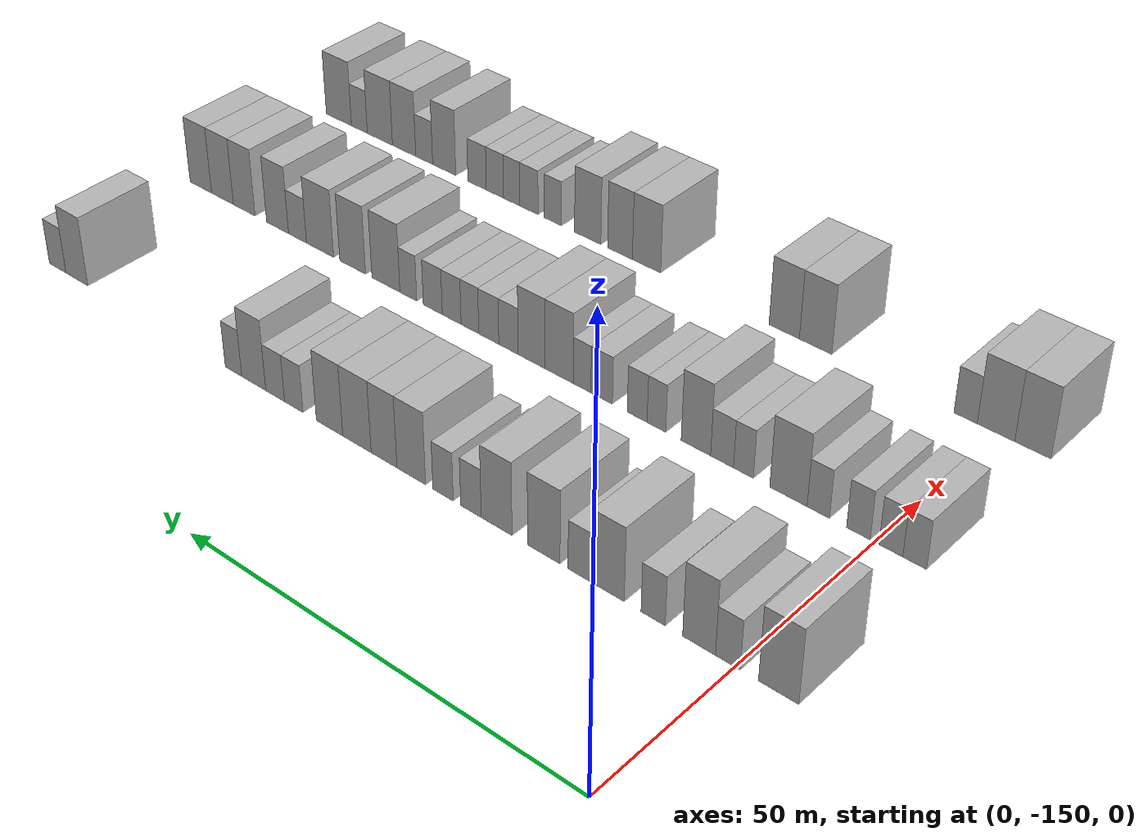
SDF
<sdf version="1.6">
 <world name="default">
  <model name="building_24">
   <static>1</static>
   <pose>25.0000 -154.7398 0 0.000000 0.000000 0.000000</pose>
   <link name="link">
    <pose>0 0 4.50 0 0 0</pose>
    <collision name="collision"><geometry><box><size>10.0000 4.3622 9.0000</size></box></geometry></collision>
    <visual name="visual">
     <cast_shadows>0</cast_shadows>
     <geometry><box><size>10.0000 4.3622 9.0000</size></box></geometry>
     <material>
      <script>
       <uri>model://HANNAS_wall/materials/scripts</uri>
       <uri>model://HANNAS_wall/materials/textures</uri>
       <name>vrc/HANNAS_wall</name>
      </script>
     </material>
    </visual>
   </link>
  </model>
  <model name="building_25">
   <static>1</static>
   <pose>25.0000 -149.1673 0 0.000000 0.000000 0.000000</pose>
   <link name="link">
    <pose>0 0 3.00 0 0 0</pose>
    <collision name="collision"><geometry><box><size>10.0000 2.7828 6.0000</size></box></geometry></collision>
    <visual name="visual">
     <cast_shadows>0</cast_shadows>
     <geometry><box><size>10.0000 2.7828 6.0000</size></box></geometry>
     <material>
      <script>
       <uri>model://HANNAS_wall/materials/scripts</uri>
       <uri>model://HANNAS_wall/materials/textures</uri>
       <name>vrc/HANNAS_wall</name>
      </script>
     </material>
    </visual>
   </link>
  </model>
  <model name="building_26">
   <static>1</static>
   <pose>25.0000 -145.9105 0 0.000000 0.000000 0.000000</pose>
   <link name="link">
    <pose>0 0 4.50 0 0 0</pose>
    <collision name="collision"><geometry><box><size>10.0000 3.7306 9.0000</size></box></geometry></collision>
    <visual name="visual">
     <cast_shadows>0</cast_shadows>
     <geometry><box><size>10.0000 3.7306 9.0000</size></box></geometry>
     <material>
      <script>
       <uri>model://HANNAS_wall/materials/scripts</uri>
       <uri>model://HANNAS_wall/materials/textures</uri>
       <name>vrc/HANNAS_wall</name>
      </script>
     </material>
    </visual>
   </link>
  </model>
  <model name="building_27">
   <static>1</static>
   <pose>25.0000 -140.6263 0 0.000000 0.000000 0.000000</pose>
   <link name="link">
    <pose>0 0 3.00 0 0 0</pose>
    <collision name="collision"><geometry><box><size>10.0000 2.8379 6.0000</size></box></geometry></collision>
    <visual name="visual">
     <cast_shadows>0</cast_shadows>
     <geometry><box><size>10.0000 2.8379 6.0000</size></box></geometry>
     <material>
      <script>
       <uri>model://HANNAS_wall/materials/scripts</uri>
       <uri>model://HANNAS_wall/materials/textures</uri>
       <name>vrc/HANNAS_wall</name>
      </script>
     </material>
    </visual>
   </link>
  </model>
  <model name="building_28">
   <static>1</static>
   <pose>25.0000 -135.2350 0 0.000000 0.000000 0.000000</pose>
   <link name="link">
    <pose>0 0 4.50 0 0 0</pose>
    <collision name="collision"><geometry><box><size>10.0000 3.9448 9.0000</size></box></geometry></collision>
    <visual name="visual">
     <cast_shadows>0</cast_shadows>
     <geometry><box><size>10.0000 3.9448 9.0000</size></box></geometry>
     <material>
      <script>
       <uri>model://HANNAS_wall/materials/scripts</uri>
       <uri>model://HANNAS_wall/materials/textures</uri>
       <name>vrc/HANNAS_wall</name>
      </script>
     </material>
    </visual>
   </link>
  </model>
  <model name="building_29">
   <static>1</static>
   <pose>25.0000 -131.8254 0 0.000000 0.000000 0.000000</pose>
   <link name="link">
    <pose>0 0 3.00 0 0 0</pose>
    <collision name="collision"><geometry><box><size>10.0000 2.8742 6.0000</size></box></geometry></collision>
    <visual name="visual">
     <cast_shadows>0</cast_shadows>
     <geometry><box><size>10.0000 2.8742 6.0000</size></box></geometry>
     <material>
      <script>
       <uri>model://HANNAS_wall/materials/scripts</uri>
       <uri>model://HANNAS_wall/materials/textures</uri>
       <name>vrc/HANNAS_wall</name>
      </script>
     </material>
    </visual>
   </link>
  </model>
  <model name="building_30">
   <static>1</static>
   <pose>25.0000 -127.3607 0 0.000000 0.000000 0.000000</pose>
   <link name="link">
    <pose>0 0 4.50 0 0 0</pose>
    <collision name="collision"><geometry><box><size>10.0000 4.0552 9.0000</size></box></geometry></collision>
    <visual name="visual">
     <cast_shadows>0</cast_shadows>
     <geometry><box><size>10.0000 4.0552 9.0000</size></box></geometry>
     <material>
      <script>
       <uri>model://HANNAS_wall/materials/scripts</uri>
       <uri>model://HANNAS_wall/materials/textures</uri>
       <name>vrc/HANNAS_wall</name>
      </script>
     </material>
    </visual>
   </link>
  </model>
  <model name="building_31">
   <static>1</static>
   <pose>25.0000 -121.3324 0 0.000000 0.000000 0.000000</pose>
   <link name="link">
    <pose>0 0 4.50 0 0 0</pose>
    <collision name="collision"><geometry><box><size>10.0000 4.0013 9.0000</size></box></geometry></collision>
    <visual name="visual">
     <cast_shadows>0</cast_shadows>
     <geometry><box><size>10.0000 4.0013 9.0000</size></box></geometry>
     <material>
      <script>
       <uri>model://HANNAS_wall/materials/scripts</uri>
       <uri>model://HANNAS_wall/materials/textures</uri>
       <name>vrc/HANNAS_wall</name>
      </script>
     </material>
    </visual>
   </link>
  </model>
  <model name="building_32">
   <static>1</static>
   <pose>25.0000 -117.9784 0 0.000000 0.000000 0.000000</pose>
   <link name="link">
    <pose>0 0 3.00 0 0 0</pose>
    <collision name="collision"><geometry><box><size>10.0000 2.7067 6.0000</size></box></geometry></collision>
    <visual name="visual">
     <cast_shadows>0</cast_shadows>
     <geometry><box><size>10.0000 2.7067 6.0000</size></box></geometry>
     <material>
      <script>
       <uri>model://HANNAS_wall/materials/scripts</uri>
       <uri>model://HANNAS_wall/materials/textures</uri>
       <name>vrc/HANNAS_wall</name>
      </script>
     </material>
    </visual>
   </link>
  </model>
  <model name="building_33">
   <static>1</static>
   <pose>25.0000 -114.2575 0 0.000000 0.000000 0.000000</pose>
   <link name="link">
    <pose>0 0 3.00 0 0 0</pose>
    <collision name="collision"><geometry><box><size>10.0000 2.7352 6.0000</size></box></geometry></collision>
    <visual name="visual">
     <cast_shadows>0</cast_shadows>
     <geometry><box><size>10.0000 2.7352 6.0000</size></box></geometry>
     <material>
      <script>
       <uri>model://HANNAS_wall/materials/scripts</uri>
       <uri>model://HANNAS_wall/materials/textures</uri>
       <name>vrc/HANNAS_wall</name>
      </script>
     </material>
    </visual>
   </link>
  </model>
  <model name="building_34">
   <static>1</static>
   <pose>25.0000 -109.9211 0 0.000000 0.000000 0.000000</pose>
   <link name="link">
    <pose>0 0 4.50 0 0 0</pose>
    <collision name="collision"><geometry><box><size>10.0000 3.9376 9.0000</size></box></geometry></collision>
    <visual name="visual">
     <cast_shadows>0</cast_shadows>
     <geometry><box><size>10.0000 3.9376 9.0000</size></box></geometry>
     <material>
      <script>
       <uri>model://HANNAS_wall/materials/scripts</uri>
       <uri>model://HANNAS_wall/materials/textures</uri>
       <name>vrc/HANNAS_wall</name>
      </script>
     </material>
    </visual>
   </link>
  </model>
  <model name="building_35">
   <static>1</static>
   <pose>25.0000 -106.1404 0 0.000000 0.000000 0.000000</pose>
   <link name="link">
    <pose>0 0 4.50 0 0 0</pose>
    <collision name="collision"><geometry><box><size>10.0000 3.6238 9.0000</size></box></geometry></collision>
    <visual name="visual">
     <cast_shadows>0</cast_shadows>
     <geometry><box><size>10.0000 3.6238 9.0000</size></box></geometry>
     <material>
      <script>
       <uri>model://HANNAS_wall/materials/scripts</uri>
       <uri>model://HANNAS_wall/materials/textures</uri>
       <name>vrc/HANNAS_wall</name>
      </script>
     </material>
    </visual>
   </link>
  </model>
  <model name="building_36">
   <static>1</static>
   <pose>25.0000 -102.3017 0 0.000000 0.000000 0.000000</pose>
   <link name="link">
    <pose>0 0 4.50 0 0 0</pose>
    <collision name="collision"><geometry><box><size>10.0000 4.0537 9.0000</size></box></geometry></collision>
    <visual name="visual">
     <cast_shadows>0</cast_shadows>
     <geometry><box><size>10.0000 4.0537 9.0000</size></box></geometry>
     <material>
      <script>
       <uri>model://HANNAS_wall/materials/scripts</uri>
       <uri>model://HANNAS_wall/materials/textures</uri>
       <name>vrc/HANNAS_wall</name>
      </script>
     </material>
    </visual>
   </link>
  </model>
  <model name="building_37">
   <static>1</static>
   <pose>25.0000 -98.3519 0 0.000000 0.000000 0.000000</pose>
   <link name="link">
    <pose>0 0 4.50 0 0 0</pose>
    <collision name="collision"><geometry><box><size>10.0000 3.8459 9.0000</size></box></geometry></collision>
    <visual name="visual">
     <cast_shadows>0</cast_shadows>
     <geometry><box><size>10.0000 3.8459 9.0000</size></box></geometry>
     <material>
      <script>
       <uri>model://HANNAS_wall/materials/scripts</uri>
       <uri>model://HANNAS_wall/materials/textures</uri>
       <name>vrc/HANNAS_wall</name>
      </script>
     </material>
    </visual>
   </link>
  </model>
  <model name="building_38">
   <static>1</static>
   <pose>25.0000 -93.0518 0 0.000000 0.000000 0.000000</pose>
   <link name="link">
    <pose>0 0 3.00 0 0 0</pose>
    <collision name="collision"><geometry><box><size>10.0000 2.7543 6.0000</size></box></geometry></collision>
    <visual name="visual">
     <cast_shadows>0</cast_shadows>
     <geometry><box><size>10.0000 2.7543 6.0000</size></box></geometry>
     <material>
      <script>
       <uri>model://HANNAS_wall/materials/scripts</uri>
       <uri>model://HANNAS_wall/materials/textures</uri>
       <name>vrc/HANNAS_wall</name>
      </script>
     </material>
    </visual>
   </link>
  </model>
  <model name="building_39">
   <static>1</static>
   <pose>25.0000 -90.2512 0 0.000000 0.000000 0.000000</pose>
   <link name="link">
    <pose>0 0 3.00 0 0 0</pose>
    <collision name="collision"><geometry><box><size>10.0000 2.8469 6.0000</size></box></geometry></collision>
    <visual name="visual">
     <cast_shadows>0</cast_shadows>
     <geometry><box><size>10.0000 2.8469 6.0000</size></box></geometry>
     <material>
      <script>
       <uri>model://HANNAS_wall/materials/scripts</uri>
       <uri>model://HANNAS_wall/materials/textures</uri>
       <name>vrc/HANNAS_wall</name>
      </script>
     </material>
    </visual>
   </link>
  </model>
  <model name="building_40">
   <static>1</static>
   <pose>25.0000 -86.9753 0 0.000000 0.000000 0.000000</pose>
   <link name="link">
    <pose>0 0 4.50 0 0 0</pose>
    <collision name="collision"><geometry><box><size>10.0000 3.7048 9.0000</size></box></geometry></collision>
    <visual name="visual">
     <cast_shadows>0</cast_shadows>
     <geometry><box><size>10.0000 3.7048 9.0000</size></box></geometry>
     <material>
      <script>
       <uri>model://HANNAS_wall/materials/scripts</uri>
       <uri>model://HANNAS_wall/materials/textures</uri>
       <name>vrc/HANNAS_wall</name>
      </script>
     </material>
    </visual>
   </link>
  </model>
  <model name="building_41">
   <static>1</static>
   <pose>25.0000 -83.8453 0 0.000000 0.000000 0.000000</pose>
   <link name="link">
    <pose>0 0 3.00 0 0 0</pose>
    <collision name="collision"><geometry><box><size>10.0000 2.5552 6.0000</size></box></geometry></collision>
    <visual name="visual">
     <cast_shadows>0</cast_shadows>
     <geometry><box><size>10.0000 2.5552 6.0000</size></box></geometry>
     <material>
      <script>
       <uri>model://HANNAS_wall/materials/scripts</uri>
       <uri>model://HANNAS_wall/materials/textures</uri>
       <name>vrc/HANNAS_wall</name>
      </script>
     </material>
    </visual>
   </link>
  </model>
  <model name="building_42">
   <static>1</static>
   <pose>25.0000 -57.7793 0 0.000000 0.000000 0.000000</pose>
   <link name="link">
    <pose>0 0 4.50 0 0 0</pose>
    <collision name="collision"><geometry><box><size>10.0000 3.8590 9.0000</size></box></geometry></collision>
    <visual name="visual">
     <cast_shadows>0</cast_shadows>
     <geometry><box><size>10.0000 3.8590 9.0000</size></box></geometry>
     <material>
      <script>
       <uri>model://HANNAS_wall/materials/scripts</uri>
       <uri>model://HANNAS_wall/materials/textures</uri>
       <name>vrc/HANNAS_wall</name>
      </script>
     </material>
    </visual>
   </link>
  </model>
  <model name="building_43">
   <static>1</static>
   <pose>25.0000 -54.3826 0 0.000000 0.000000 0.000000</pose>
   <link name="link">
    <pose>0 0 3.00 0 0 0</pose>
    <collision name="collision"><geometry><box><size>10.0000 2.9344 6.0000</size></box></geometry></collision>
    <visual name="visual">
     <cast_shadows>0</cast_shadows>
     <geometry><box><size>10.0000 2.9344 6.0000</size></box></geometry>
     <material>
      <script>
       <uri>model://HANNAS_wall/materials/scripts</uri>
       <uri>model://HANNAS_wall/materials/textures</uri>
       <name>vrc/HANNAS_wall</name>
      </script>
     </material>
    </visual>
   </link>
  </model>
  <model name="building_138">
   <static>1</static>
   <pose>47.0000 -154.4668 0 0.000000 0.000000 0.000000</pose>
   <link name="link">
    <pose>0 0 3.00 0 0 0</pose>
    <collision name="collision"><geometry><box><size>10.0000 2.6499 6.0000</size></box></geometry></collision>
    <visual name="visual">
     <cast_shadows>0</cast_shadows>
     <geometry><box><size>10.0000 2.6499 6.0000</size></box></geometry>
     <material>
      <script>
       <uri>model://HANNAS_wall/materials/scripts</uri>
       <uri>model://HANNAS_wall/materials/textures</uri>
       <name>vrc/HANNAS_wall</name>
      </script>
     </material>
    </visual>
   </link>
  </model>
  <model name="building_139">
   <static>1</static>
   <pose>47.0000 -151.7974 0 0.000000 0.000000 0.000000</pose>
   <link name="link">
    <pose>0 0 3.00 0 0 0</pose>
    <collision name="collision"><geometry><box><size>10.0000 2.6889 6.0000</size></box></geometry></collision>
    <visual name="visual">
     <cast_shadows>0</cast_shadows>
     <geometry><box><size>10.0000 2.6889 6.0000</size></box></geometry>
     <material>
      <script>
       <uri>model://HANNAS_wall/materials/scripts</uri>
       <uri>model://HANNAS_wall/materials/textures</uri>
       <name>vrc/HANNAS_wall</name>
      </script>
     </material>
    </visual>
   </link>
  </model>
  <model name="building_140">
   <static>1</static>
   <pose>47.0000 -148.0960 0 0.000000 0.000000 0.000000</pose>
   <link name="link">
    <pose>0 0 3.00 0 0 0</pose>
    <collision name="collision"><geometry><box><size>10.0000 2.7138 6.0000</size></box></geometry></collision>
    <visual name="visual">
     <cast_shadows>0</cast_shadows>
     <geometry><box><size>10.0000 2.7138 6.0000</size></box></geometry>
     <material>
      <script>
       <uri>model://HANNAS_wall/materials/scripts</uri>
       <uri>model://HANNAS_wall/materials/textures</uri>
       <name>vrc/HANNAS_wall</name>
      </script>
     </material>
    </visual>
   </link>
  </model>
  <model name="building_141">
   <static>1</static>
   <pose>47.0000 -143.4165 0 0.000000 0.000000 0.000000</pose>
   <link name="link">
    <pose>0 0 3.00 0 0 0</pose>
    <collision name="collision"><geometry><box><size>10.0000 2.6453 6.0000</size></box></geometry></collision>
    <visual name="visual">
     <cast_shadows>0</cast_shadows>
     <geometry><box><size>10.0000 2.6453 6.0000</size></box></geometry>
     <material>
      <script>
       <uri>model://HANNAS_wall/materials/scripts</uri>
       <uri>model://HANNAS_wall/materials/textures</uri>
       <name>vrc/HANNAS_wall</name>
      </script>
     </material>
    </visual>
   </link>
  </model>
  <model name="building_142">
   <static>1</static>
   <pose>47.0000 -139.8525 0 0.000000 0.000000 0.000000</pose>
   <link name="link">
    <pose>0 0 4.50 0 0 0</pose>
    <collision name="collision"><geometry><box><size>10.0000 4.4826 9.0000</size></box></geometry></collision>
    <visual name="visual">
     <cast_shadows>0</cast_shadows>
     <geometry><box><size>10.0000 4.4826 9.0000</size></box></geometry>
     <material>
      <script>
       <uri>model://HANNAS_wall/materials/scripts</uri>
       <uri>model://HANNAS_wall/materials/textures</uri>
       <name>vrc/HANNAS_wall</name>
      </script>
     </material>
    </visual>
   </link>
  </model>
  <model name="building_143">
   <static>1</static>
   <pose>47.0000 -134.3795 0 0.000000 0.000000 0.000000</pose>
   <link name="link">
    <pose>0 0 3.00 0 0 0</pose>
    <collision name="collision"><geometry><box><size>10.0000 2.4635 6.0000</size></box></geometry></collision>
    <visual name="visual">
     <cast_shadows>0</cast_shadows>
     <geometry><box><size>10.0000 2.4635 6.0000</size></box></geometry>
     <material>
      <script>
       <uri>model://HANNAS_wall/materials/scripts</uri>
       <uri>model://HANNAS_wall/materials/textures</uri>
       <name>vrc/HANNAS_wall</name>
      </script>
     </material>
    </visual>
   </link>
  </model>
  <model name="building_144">
   <static>1</static>
   <pose>47.0000 -131.7147 0 0.000000 0.000000 0.000000</pose>
   <link name="link">
    <pose>0 0 3.00 0 0 0</pose>
    <collision name="collision"><geometry><box><size>10.0000 2.8660 6.0000</size></box></geometry></collision>
    <visual name="visual">
     <cast_shadows>0</cast_shadows>
     <geometry><box><size>10.0000 2.8660 6.0000</size></box></geometry>
     <material>
      <script>
       <uri>model://HANNAS_wall/materials/scripts</uri>
       <uri>model://HANNAS_wall/materials/textures</uri>
       <name>vrc/HANNAS_wall</name>
      </script>
     </material>
    </visual>
   </link>
  </model>
  <model name="building_145">
   <static>1</static>
   <pose>47.0000 -128.4107 0 0.000000 0.000000 0.000000</pose>
   <link name="link">
    <pose>0 0 4.50 0 0 0</pose>
    <collision name="collision"><geometry><box><size>10.0000 3.7419 9.0000</size></box></geometry></collision>
    <visual name="visual">
     <cast_shadows>0</cast_shadows>
     <geometry><box><size>10.0000 3.7419 9.0000</size></box></geometry>
     <material>
      <script>
       <uri>model://HANNAS_wall/materials/scripts</uri>
       <uri>model://HANNAS_wall/materials/textures</uri>
       <name>vrc/HANNAS_wall</name>
      </script>
     </material>
    </visual>
   </link>
  </model>
  <model name="building_146">
   <static>1</static>
   <pose>47.0000 -123.3210 0 0.000000 0.000000 0.000000</pose>
   <link name="link">
    <pose>0 0 3.00 0 0 0</pose>
    <collision name="collision"><geometry><box><size>10.0000 2.4374 6.0000</size></box></geometry></collision>
    <visual name="visual">
     <cast_shadows>0</cast_shadows>
     <geometry><box><size>10.0000 2.4374 6.0000</size></box></geometry>
     <material>
      <script>
       <uri>model://HANNAS_wall/materials/scripts</uri>
       <uri>model://HANNAS_wall/materials/textures</uri>
       <name>vrc/HANNAS_wall</name>
      </script>
     </material>
    </visual>
   </link>
  </model>
  <model name="building_147">
   <static>1</static>
   <pose>47.0000 -120.7961 0 0.000000 0.000000 0.000000</pose>
   <link name="link">
    <pose>0 0 3.00 0 0 0</pose>
    <collision name="collision"><geometry><box><size>10.0000 2.6125 6.0000</size></box></geometry></collision>
    <visual name="visual">
     <cast_shadows>0</cast_shadows>
     <geometry><box><size>10.0000 2.6125 6.0000</size></box></geometry>
     <material>
      <script>
       <uri>model://HANNAS_wall/materials/scripts</uri>
       <uri>model://HANNAS_wall/materials/textures</uri>
       <name>vrc/HANNAS_wall</name>
      </script>
     </material>
    </visual>
   </link>
  </model>
  <model name="building_148">
   <static>1</static>
   <pose>47.0000 -116.0344 0 0.000000 0.000000 0.000000</pose>
   <link name="link">
    <pose>0 0 3.00 0 0 0</pose>
    <collision name="collision"><geometry><box><size>10.0000 2.9110 6.0000</size></box></geometry></collision>
    <visual name="visual">
     <cast_shadows>0</cast_shadows>
     <geometry><box><size>10.0000 2.9110 6.0000</size></box></geometry>
     <material>
      <script>
       <uri>model://HANNAS_wall/materials/scripts</uri>
       <uri>model://HANNAS_wall/materials/textures</uri>
       <name>vrc/HANNAS_wall</name>
      </script>
     </material>
    </visual>
   </link>
  </model>
  <model name="building_149">
   <static>1</static>
   <pose>47.0000 -113.3781 0 0.000000 0.000000 0.000000</pose>
   <link name="link">
    <pose>0 0 3.00 0 0 0</pose>
    <collision name="collision"><geometry><box><size>10.0000 2.4015 6.0000</size></box></geometry></collision>
    <visual name="visual">
     <cast_shadows>0</cast_shadows>
     <geometry><box><size>10.0000 2.4015 6.0000</size></box></geometry>
     <material>
      <script>
       <uri>model://HANNAS_wall/materials/scripts</uri>
       <uri>model://HANNAS_wall/materials/textures</uri>
       <name>vrc/HANNAS_wall</name>
      </script>
     </material>
    </visual>
   </link>
  </model>
  <model name="building_150">
   <static>1</static>
   <pose>47.0000 -110.2010 0 0.000000 0.000000 0.000000</pose>
   <link name="link">
    <pose>0 0 4.50 0 0 0</pose>
    <collision name="collision"><geometry><box><size>10.0000 3.9528 9.0000</size></box></geometry></collision>
    <visual name="visual">
     <cast_shadows>0</cast_shadows>
     <geometry><box><size>10.0000 3.9528 9.0000</size></box></geometry>
     <material>
      <script>
       <uri>model://HANNAS_wall/materials/scripts</uri>
       <uri>model://HANNAS_wall/materials/textures</uri>
       <name>vrc/HANNAS_wall</name>
      </script>
     </material>
    </visual>
   </link>
  </model>
  <model name="building_151">
   <static>1</static>
   <pose>47.0000 -106.3253 0 0.000000 0.000000 0.000000</pose>
   <link name="link">
    <pose>0 0 4.50 0 0 0</pose>
    <collision name="collision"><geometry><box><size>10.0000 3.7985 9.0000</size></box></geometry></collision>
    <visual name="visual">
     <cast_shadows>0</cast_shadows>
     <geometry><box><size>10.0000 3.7985 9.0000</size></box></geometry>
     <material>
      <script>
       <uri>model://HANNAS_wall/materials/scripts</uri>
       <uri>model://HANNAS_wall/materials/textures</uri>
       <name>vrc/HANNAS_wall</name>
      </script>
     </material>
    </visual>
   </link>
  </model>
  <model name="building_152">
   <static>1</static>
   <pose>47.0000 -103.0340 0 0.000000 0.000000 0.000000</pose>
   <link name="link">
    <pose>0 0 3.00 0 0 0</pose>
    <collision name="collision"><geometry><box><size>10.0000 2.7840 6.0000</size></box></geometry></collision>
    <visual name="visual">
     <cast_shadows>0</cast_shadows>
     <geometry><box><size>10.0000 2.7840 6.0000</size></box></geometry>
     <material>
      <script>
       <uri>model://HANNAS_wall/materials/scripts</uri>
       <uri>model://HANNAS_wall/materials/textures</uri>
       <name>vrc/HANNAS_wall</name>
      </script>
     </material>
    </visual>
   </link>
  </model>
  <model name="building_153">
   <static>1</static>
   <pose>47.0000 -100.1801 0 0.000000 0.000000 0.000000</pose>
   <link name="link">
    <pose>0 0 3.00 0 0 0</pose>
    <collision name="collision"><geometry><box><size>10.0000 2.9239 6.0000</size></box></geometry></collision>
    <visual name="visual">
     <cast_shadows>0</cast_shadows>
     <geometry><box><size>10.0000 2.9239 6.0000</size></box></geometry>
     <material>
      <script>
       <uri>model://HANNAS_wall/materials/scripts</uri>
       <uri>model://HANNAS_wall/materials/textures</uri>
       <name>vrc/HANNAS_wall</name>
      </script>
     </material>
    </visual>
   </link>
  </model>
  <model name="building_154">
   <static>1</static>
   <pose>47.0000 -97.4170 0 0.000000 0.000000 0.000000</pose>
   <link name="link">
    <pose>0 0 3.00 0 0 0</pose>
    <collision name="collision"><geometry><box><size>10.0000 2.6022 6.0000</size></box></geometry></collision>
    <visual name="visual">
     <cast_shadows>0</cast_shadows>
     <geometry><box><size>10.0000 2.6022 6.0000</size></box></geometry>
     <material>
      <script>
       <uri>model://HANNAS_wall/materials/scripts</uri>
       <uri>model://HANNAS_wall/materials/textures</uri>
       <name>vrc/HANNAS_wall</name>
      </script>
     </material>
    </visual>
   </link>
  </model>
  <model name="building_155">
   <static>1</static>
   <pose>47.0000 -94.7061 0 0.000000 0.000000 0.000000</pose>
   <link name="link">
    <pose>0 0 3.00 0 0 0</pose>
    <collision name="collision"><geometry><box><size>10.0000 2.8196 6.0000</size></box></geometry></collision>
    <visual name="visual">
     <cast_shadows>0</cast_shadows>
     <geometry><box><size>10.0000 2.8196 6.0000</size></box></geometry>
     <material>
      <script>
       <uri>model://HANNAS_wall/materials/scripts</uri>
       <uri>model://HANNAS_wall/materials/textures</uri>
       <name>vrc/HANNAS_wall</name>
      </script>
     </material>
    </visual>
   </link>
  </model>
  <model name="building_156">
   <static>1</static>
   <pose>47.0000 -91.8565 0 0.000000 0.000000 0.000000</pose>
   <link name="link">
    <pose>0 0 3.00 0 0 0</pose>
    <collision name="collision"><geometry><box><size>10.0000 2.8797 6.0000</size></box></geometry></collision>
    <visual name="visual">
     <cast_shadows>0</cast_shadows>
     <geometry><box><size>10.0000 2.8797 6.0000</size></box></geometry>
     <material>
      <script>
       <uri>model://HANNAS_wall/materials/scripts</uri>
       <uri>model://HANNAS_wall/materials/textures</uri>
       <name>vrc/HANNAS_wall</name>
      </script>
     </material>
    </visual>
   </link>
  </model>
  <model name="building_157">
   <static>1</static>
   <pose>47.0000 -88.1163 0 0.000000 0.000000 0.000000</pose>
   <link name="link">
    <pose>0 0 3.00 0 0 0</pose>
    <collision name="collision"><geometry><box><size>10.0000 2.6007 6.0000</size></box></geometry></collision>
    <visual name="visual">
     <cast_shadows>0</cast_shadows>
     <geometry><box><size>10.0000 2.6007 6.0000</size></box></geometry>
     <material>
      <script>
       <uri>model://HANNAS_wall/materials/scripts</uri>
       <uri>model://HANNAS_wall/materials/textures</uri>
       <name>vrc/HANNAS_wall</name>
      </script>
     </material>
    </visual>
   </link>
  </model>
  <model name="building_158">
   <static>1</static>
   <pose>47.0000 -84.6212 0 0.000000 0.000000 0.000000</pose>
   <link name="link">
    <pose>0 0 4.50 0 0 0</pose>
    <collision name="collision"><geometry><box><size>10.0000 4.3895 9.0000</size></box></geometry></collision>
    <visual name="visual">
     <cast_shadows>0</cast_shadows>
     <geometry><box><size>10.0000 4.3895 9.0000</size></box></geometry>
     <material>
      <script>
       <uri>model://HANNAS_wall/materials/scripts</uri>
       <uri>model://HANNAS_wall/materials/textures</uri>
       <name>vrc/HANNAS_wall</name>
      </script>
     </material>
    </visual>
   </link>
  </model>
  <model name="building_159">
   <static>1</static>
   <pose>47.0000 -79.3556 0 0.000000 0.000000 0.000000</pose>
   <link name="link">
    <pose>0 0 4.50 0 0 0</pose>
    <collision name="collision"><geometry><box><size>10.0000 4.1417 9.0000</size></box></geometry></collision>
    <visual name="visual">
     <cast_shadows>0</cast_shadows>
     <geometry><box><size>10.0000 4.1417 9.0000</size></box></geometry>
     <material>
      <script>
       <uri>model://HANNAS_wall/materials/scripts</uri>
       <uri>model://HANNAS_wall/materials/textures</uri>
       <name>vrc/HANNAS_wall</name>
      </script>
     </material>
    </visual>
   </link>
  </model>
  <model name="building_160">
   <static>1</static>
   <pose>47.0000 -74.0515 0 0.000000 0.000000 0.000000</pose>
   <link name="link">
    <pose>0 0 4.50 0 0 0</pose>
    <collision name="collision"><geometry><box><size>10.0000 4.4664 9.0000</size></box></geometry></collision>
    <visual name="visual">
     <cast_shadows>0</cast_shadows>
     <geometry><box><size>10.0000 4.4664 9.0000</size></box></geometry>
     <material>
      <script>
       <uri>model://HANNAS_wall/materials/scripts</uri>
       <uri>model://HANNAS_wall/materials/textures</uri>
       <name>vrc/HANNAS_wall</name>
      </script>
     </material>
    </visual>
   </link>
  </model>
  <model name="building_161">
   <static>1</static>
   <pose>47.0000 -70.3211 0 0.000000 0.000000 0.000000</pose>
   <link name="link">
    <pose>0 0 3.00 0 0 0</pose>
    <collision name="collision"><geometry><box><size>10.0000 2.9943 6.0000</size></box></geometry></collision>
    <visual name="visual">
     <cast_shadows>0</cast_shadows>
     <geometry><box><size>10.0000 2.9943 6.0000</size></box></geometry>
     <material>
      <script>
       <uri>model://HANNAS_wall/materials/scripts</uri>
       <uri>model://HANNAS_wall/materials/textures</uri>
       <name>vrc/HANNAS_wall</name>
      </script>
     </material>
    </visual>
   </link>
  </model>
  <model name="building_162">
   <static>1</static>
   <pose>47.0000 -66.9714 0 0.000000 0.000000 0.000000</pose>
   <link name="link">
    <pose>0 0 4.50 0 0 0</pose>
    <collision name="collision"><geometry><box><size>10.0000 3.7052 9.0000</size></box></geometry></collision>
    <visual name="visual">
     <cast_shadows>0</cast_shadows>
     <geometry><box><size>10.0000 3.7052 9.0000</size></box></geometry>
     <material>
      <script>
       <uri>model://HANNAS_wall/materials/scripts</uri>
       <uri>model://HANNAS_wall/materials/textures</uri>
       <name>vrc/HANNAS_wall</name>
      </script>
     </material>
    </visual>
   </link>
  </model>
  <model name="building_163">
   <static>1</static>
   <pose>47.0000 -61.2421 0 0.000000 0.000000 0.000000</pose>
   <link name="link">
    <pose>0 0 4.50 0 0 0</pose>
    <collision name="collision"><geometry><box><size>10.0000 3.7534 9.0000</size></box></geometry></collision>
    <visual name="visual">
     <cast_shadows>0</cast_shadows>
     <geometry><box><size>10.0000 3.7534 9.0000</size></box></geometry>
     <material>
      <script>
       <uri>model://HANNAS_wall/materials/scripts</uri>
       <uri>model://HANNAS_wall/materials/textures</uri>
       <name>vrc/HANNAS_wall</name>
      </script>
     </material>
    </visual>
   </link>
  </model>
  <model name="building_164">
   <static>1</static>
   <pose>47.0000 -57.4415 0 0.000000 0.000000 0.000000</pose>
   <link name="link">
    <pose>0 0 4.50 0 0 0</pose>
    <collision name="collision"><geometry><box><size>10.0000 3.8479 9.0000</size></box></geometry></collision>
    <visual name="visual">
     <cast_shadows>0</cast_shadows>
     <geometry><box><size>10.0000 3.8479 9.0000</size></box></geometry>
     <material>
      <script>
       <uri>model://HANNAS_wall/materials/scripts</uri>
       <uri>model://HANNAS_wall/materials/textures</uri>
       <name>vrc/HANNAS_wall</name>
      </script>
     </material>
    </visual>
   </link>
  </model>
  <model name="building_165">
   <static>1</static>
   <pose>47.0000 -53.6020 0 0.000000 0.000000 0.000000</pose>
   <link name="link">
    <pose>0 0 4.50 0 0 0</pose>
    <collision name="collision"><geometry><box><size>10.0000 3.8311 9.0000</size></box></geometry></collision>
    <visual name="visual">
     <cast_shadows>0</cast_shadows>
     <geometry><box><size>10.0000 3.8311 9.0000</size></box></geometry>
     <material>
      <script>
       <uri>model://HANNAS_wall/materials/scripts</uri>
       <uri>model://HANNAS_wall/materials/textures</uri>
       <name>vrc/HANNAS_wall</name>
      </script>
     </material>
    </visual>
   </link>
  </model>
  <model name="building_250">
   <static>1</static>
   <pose>69.0000 -154.1380 0 0.000000 0.000000 0.000000</pose>
   <link name="link">
    <pose>0 0 4.50 0 0 0</pose>
    <collision name="collision"><geometry><box><size>10.0000 4.1744 9.0000</size></box></geometry></collision>
    <visual name="visual">
     <cast_shadows>0</cast_shadows>
     <geometry><box><size>10.0000 4.1744 9.0000</size></box></geometry>
     <material>
      <script>
       <uri>model://HANNAS_wall/materials/scripts</uri>
       <uri>model://HANNAS_wall/materials/textures</uri>
       <name>vrc/HANNAS_wall</name>
      </script>
     </material>
    </visual>
   </link>
  </model>
  <model name="building_251">
   <static>1</static>
   <pose>69.0000 -149.8443 0 0.000000 0.000000 0.000000</pose>
   <link name="link">
    <pose>0 0 4.50 0 0 0</pose>
    <collision name="collision"><geometry><box><size>10.0000 4.4131 9.0000</size></box></geometry></collision>
    <visual name="visual">
     <cast_shadows>0</cast_shadows>
     <geometry><box><size>10.0000 4.4131 9.0000</size></box></geometry>
     <material>
      <script>
       <uri>model://HANNAS_wall/materials/scripts</uri>
       <uri>model://HANNAS_wall/materials/textures</uri>
       <name>vrc/HANNAS_wall</name>
      </script>
     </material>
    </visual>
   </link>
  </model>
  <model name="building_252">
   <static>1</static>
   <pose>69.0000 -146.2536 0 0.000000 0.000000 0.000000</pose>
   <link name="link">
    <pose>0 0 3.00 0 0 0</pose>
    <collision name="collision"><geometry><box><size>10.0000 2.7682 6.0000</size></box></geometry></collision>
    <visual name="visual">
     <cast_shadows>0</cast_shadows>
     <geometry><box><size>10.0000 2.7682 6.0000</size></box></geometry>
     <material>
      <script>
       <uri>model://HANNAS_wall/materials/scripts</uri>
       <uri>model://HANNAS_wall/materials/textures</uri>
       <name>vrc/HANNAS_wall</name>
      </script>
     </material>
    </visual>
   </link>
  </model>
  <model name="building_253">
   <static>1</static>
   <pose>69.0000 -127.5063 0 0.000000 0.000000 0.000000</pose>
   <link name="link">
    <pose>0 0 4.50 0 0 0</pose>
    <collision name="collision"><geometry><box><size>10.0000 4.2421 9.0000</size></box></geometry></collision>
    <visual name="visual">
     <cast_shadows>0</cast_shadows>
     <geometry><box><size>10.0000 4.2421 9.0000</size></box></geometry>
     <material>
      <script>
       <uri>model://HANNAS_wall/materials/scripts</uri>
       <uri>model://HANNAS_wall/materials/textures</uri>
       <name>vrc/HANNAS_wall</name>
      </script>
     </material>
    </visual>
   </link>
  </model>
  <model name="building_254">
   <static>1</static>
   <pose>69.0000 -123.3706 0 0.000000 0.000000 0.000000</pose>
   <link name="link">
    <pose>0 0 4.50 0 0 0</pose>
    <collision name="collision"><geometry><box><size>10.0000 4.0293 9.0000</size></box></geometry></collision>
    <visual name="visual">
     <cast_shadows>0</cast_shadows>
     <geometry><box><size>10.0000 4.0293 9.0000</size></box></geometry>
     <material>
      <script>
       <uri>model://HANNAS_wall/materials/scripts</uri>
       <uri>model://HANNAS_wall/materials/textures</uri>
       <name>vrc/HANNAS_wall</name>
      </script>
     </material>
    </visual>
   </link>
  </model>
  <model name="building_255">
   <static>1</static>
   <pose>69.0000 -104.1983 0 0.000000 0.000000 0.000000</pose>
   <link name="link">
    <pose>0 0 4.50 0 0 0</pose>
    <collision name="collision"><geometry><box><size>10.0000 4.1050 9.0000</size></box></geometry></collision>
    <visual name="visual">
     <cast_shadows>0</cast_shadows>
     <geometry><box><size>10.0000 4.1050 9.0000</size></box></geometry>
     <material>
      <script>
       <uri>model://HANNAS_wall/materials/scripts</uri>
       <uri>model://HANNAS_wall/materials/textures</uri>
       <name>vrc/HANNAS_wall</name>
      </script>
     </material>
    </visual>
   </link>
  </model>
  <model name="building_256">
   <static>1</static>
   <pose>69.0000 -100.3123 0 0.000000 0.000000 0.000000</pose>
   <link name="link">
    <pose>0 0 4.50 0 0 0</pose>
    <collision name="collision"><geometry><box><size>10.0000 3.6670 9.0000</size></box></geometry></collision>
    <visual name="visual">
     <cast_shadows>0</cast_shadows>
     <geometry><box><size>10.0000 3.6670 9.0000</size></box></geometry>
     <material>
      <script>
       <uri>model://HANNAS_wall/materials/scripts</uri>
       <uri>model://HANNAS_wall/materials/textures</uri>
       <name>vrc/HANNAS_wall</name>
      </script>
     </material>
    </visual>
   </link>
  </model>
  <model name="building_257">
   <static>1</static>
   <pose>69.0000 -95.4937 0 0.000000 0.000000 0.000000</pose>
   <link name="link">
    <pose>0 0 4.50 0 0 0</pose>
    <collision name="collision"><geometry><box><size>10.0000 3.9702 9.0000</size></box></geometry></collision>
    <visual name="visual">
     <cast_shadows>0</cast_shadows>
     <geometry><box><size>10.0000 3.9702 9.0000</size></box></geometry>
     <material>
      <script>
       <uri>model://HANNAS_wall/materials/scripts</uri>
       <uri>model://HANNAS_wall/materials/textures</uri>
       <name>vrc/HANNAS_wall</name>
      </script>
     </material>
    </visual>
   </link>
  </model>
  <model name="building_258">
   <static>1</static>
   <pose>69.0000 -90.1927 0 0.000000 0.000000 0.000000</pose>
   <link name="link">
    <pose>0 0 3.00 0 0 0</pose>
    <collision name="collision"><geometry><box><size>10.0000 2.6319 6.0000</size></box></geometry></collision>
    <visual name="visual">
     <cast_shadows>0</cast_shadows>
     <geometry><box><size>10.0000 2.6319 6.0000</size></box></geometry>
     <material>
      <script>
       <uri>model://HANNAS_wall/materials/scripts</uri>
       <uri>model://HANNAS_wall/materials/textures</uri>
       <name>vrc/HANNAS_wall</name>
      </script>
     </material>
    </visual>
   </link>
  </model>
  <model name="building_259">
   <static>1</static>
   <pose>69.0000 -86.4316 0 0.000000 0.000000 0.000000</pose>
   <link name="link">
    <pose>0 0 3.00 0 0 0</pose>
    <collision name="collision"><geometry><box><size>10.0000 2.8903 6.0000</size></box></geometry></collision>
    <visual name="visual">
     <cast_shadows>0</cast_shadows>
     <geometry><box><size>10.0000 2.8903 6.0000</size></box></geometry>
     <material>
      <script>
       <uri>model://HANNAS_wall/materials/scripts</uri>
       <uri>model://HANNAS_wall/materials/textures</uri>
       <name>vrc/HANNAS_wall</name>
      </script>
     </material>
    </visual>
   </link>
  </model>
  <model name="building_260">
   <static>1</static>
   <pose>69.0000 -83.7094 0 0.000000 0.000000 0.000000</pose>
   <link name="link">
    <pose>0 0 3.00 0 0 0</pose>
    <collision name="collision"><geometry><box><size>10.0000 2.5542 6.0000</size></box></geometry></collision>
    <visual name="visual">
     <cast_shadows>0</cast_shadows>
     <geometry><box><size>10.0000 2.5542 6.0000</size></box></geometry>
     <material>
      <script>
       <uri>model://HANNAS_wall/materials/scripts</uri>
       <uri>model://HANNAS_wall/materials/textures</uri>
       <name>vrc/HANNAS_wall</name>
      </script>
     </material>
    </visual>
   </link>
  </model>
  <model name="building_261">
   <static>1</static>
   <pose>69.0000 -81.0473 0 0.000000 0.000000 0.000000</pose>
   <link name="link">
    <pose>0 0 3.00 0 0 0</pose>
    <collision name="collision"><geometry><box><size>10.0000 2.7699 6.0000</size></box></geometry></collision>
    <visual name="visual">
     <cast_shadows>0</cast_shadows>
     <geometry><box><size>10.0000 2.7699 6.0000</size></box></geometry>
     <material>
      <script>
       <uri>model://HANNAS_wall/materials/scripts</uri>
       <uri>model://HANNAS_wall/materials/textures</uri>
       <name>vrc/HANNAS_wall</name>
      </script>
     </material>
    </visual>
   </link>
  </model>
  <model name="building_262">
   <static>1</static>
   <pose>69.0000 -78.1630 0 0.000000 0.000000 0.000000</pose>
   <link name="link">
    <pose>0 0 3.00 0 0 0</pose>
    <collision name="collision"><geometry><box><size>10.0000 2.9988 6.0000</size></box></geometry></collision>
    <visual name="visual">
     <cast_shadows>0</cast_shadows>
     <geometry><box><size>10.0000 2.9988 6.0000</size></box></geometry>
     <material>
      <script>
       <uri>model://HANNAS_wall/materials/scripts</uri>
       <uri>model://HANNAS_wall/materials/textures</uri>
       <name>vrc/HANNAS_wall</name>
      </script>
     </material>
    </visual>
   </link>
  </model>
  <model name="building_263">
   <static>1</static>
   <pose>69.0000 -72.7387 0 0.000000 0.000000 0.000000</pose>
   <link name="link">
    <pose>0 0 4.50 0 0 0</pose>
    <collision name="collision"><geometry><box><size>10.0000 3.8497 9.0000</size></box></geometry></collision>
    <visual name="visual">
     <cast_shadows>0</cast_shadows>
     <geometry><box><size>10.0000 3.8497 9.0000</size></box></geometry>
     <material>
      <script>
       <uri>model://HANNAS_wall/materials/scripts</uri>
       <uri>model://HANNAS_wall/materials/textures</uri>
       <name>vrc/HANNAS_wall</name>
      </script>
     </material>
    </visual>
   </link>
  </model>
  <model name="building_264">
   <static>1</static>
   <pose>69.0000 -69.3921 0 0.000000 0.000000 0.000000</pose>
   <link name="link">
    <pose>0 0 3.00 0 0 0</pose>
    <collision name="collision"><geometry><box><size>10.0000 2.8437 6.0000</size></box></geometry></collision>
    <visual name="visual">
     <cast_shadows>0</cast_shadows>
     <geometry><box><size>10.0000 2.8437 6.0000</size></box></geometry>
     <material>
      <script>
       <uri>model://HANNAS_wall/materials/scripts</uri>
       <uri>model://HANNAS_wall/materials/textures</uri>
       <name>vrc/HANNAS_wall</name>
      </script>
     </material>
    </visual>
   </link>
  </model>
  <model name="building_265">
   <static>1</static>
   <pose>69.0000 -65.9763 0 0.000000 0.000000 0.000000</pose>
   <link name="link">
    <pose>0 0 4.50 0 0 0</pose>
    <collision name="collision"><geometry><box><size>10.0000 3.9879 9.0000</size></box></geometry></collision>
    <visual name="visual">
     <cast_shadows>0</cast_shadows>
     <geometry><box><size>10.0000 3.9879 9.0000</size></box></geometry>
     <material>
      <script>
       <uri>model://HANNAS_wall/materials/scripts</uri>
       <uri>model://HANNAS_wall/materials/textures</uri>
       <name>vrc/HANNAS_wall</name>
      </script>
     </material>
    </visual>
   </link>
  </model>
  <model name="building_266">
   <static>1</static>
   <pose>69.0000 -61.7937 0 0.000000 0.000000 0.000000</pose>
   <link name="link">
    <pose>0 0 4.50 0 0 0</pose>
    <collision name="collision"><geometry><box><size>10.0000 4.3774 9.0000</size></box></geometry></collision>
    <visual name="visual">
     <cast_shadows>0</cast_shadows>
     <geometry><box><size>10.0000 4.3774 9.0000</size></box></geometry>
     <material>
      <script>
       <uri>model://HANNAS_wall/materials/scripts</uri>
       <uri>model://HANNAS_wall/materials/textures</uri>
       <name>vrc/HANNAS_wall</name>
      </script>
     </material>
    </visual>
   </link>
  </model>
  <model name="building_267">
   <static>1</static>
   <pose>69.0000 -58.2051 0 0.000000 0.000000 0.000000</pose>
   <link name="link">
    <pose>0 0 3.00 0 0 0</pose>
    <collision name="collision"><geometry><box><size>10.0000 2.7999 6.0000</size></box></geometry></collision>
    <visual name="visual">
     <cast_shadows>0</cast_shadows>
     <geometry><box><size>10.0000 2.7999 6.0000</size></box></geometry>
     <material>
      <script>
       <uri>model://HANNAS_wall/materials/scripts</uri>
       <uri>model://HANNAS_wall/materials/textures</uri>
       <name>vrc/HANNAS_wall</name>
      </script>
     </material>
    </visual>
   </link>
  </model>
  <model name="building_268">
   <static>1</static>
   <pose>69.0000 -54.5618 0 0.000000 0.000000 0.000000</pose>
   <link name="link">
    <pose>0 0 4.50 0 0 0</pose>
    <collision name="collision"><geometry><box><size>10.0000 4.4867 9.0000</size></box></geometry></collision>
    <visual name="visual">
     <cast_shadows>0</cast_shadows>
     <geometry><box><size>10.0000 4.4867 9.0000</size></box></geometry>
     <material>
      <script>
       <uri>model://HANNAS_wall/materials/scripts</uri>
       <uri>model://HANNAS_wall/materials/textures</uri>
       <name>vrc/HANNAS_wall</name>
      </script>
     </material>
    </visual>
   </link>
  </model>
 </world>
</sdf>
